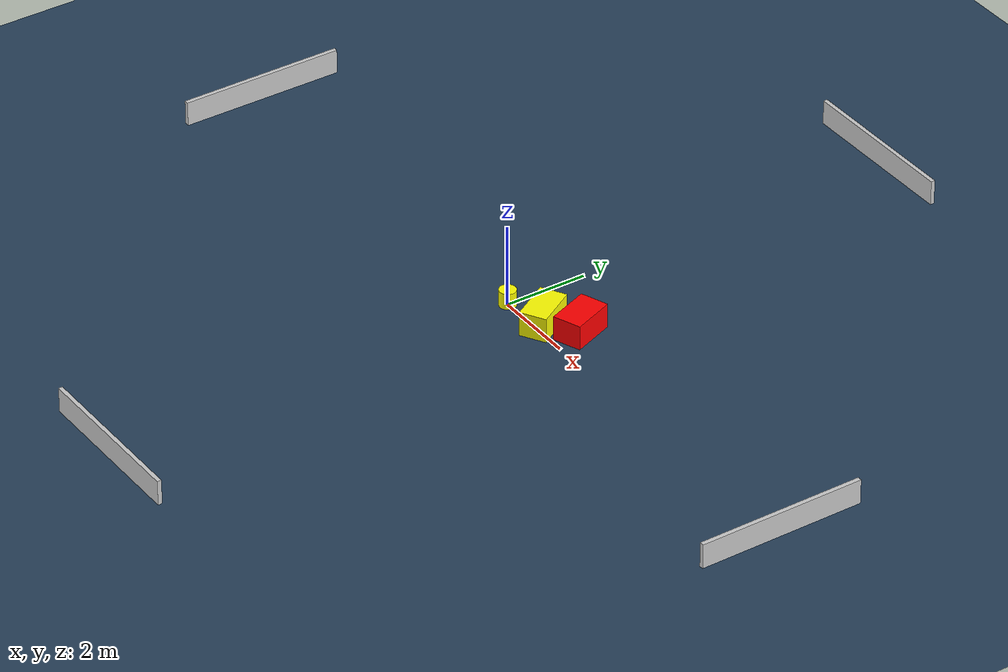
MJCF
<?xml version="1.0" ?>
<mujoco model="generated_environment">
  <option timestep="0.01" integrator="RK4" cone="elliptic"/>
  <default>
    <geom density="1"/>
  </default>
  <asset>
    <texture builtin="gradient" height="3072" name="skybox" rgb1="0.3 0.5 0.7" rgb2="0 0 0" type="skybox" width="512"/>
    <texture builtin="checker" height="300" name="groundplane" rgb1="0.2 0.3 0.4" rgb2="0.1 0.2 0.3" type="2d" width="300"/>
    <material name="groundplane" reflectance="0.2" texrepeat="5 5" texture="groundplane"/>
  </asset>
  <worldbody>
    <light dir="0 0 -1" directional="true" pos="0 0 1.5"/>
    <geom condim="3" friction="0.5 0.005 0.001" material="groundplane" name="floor" pos="0 0 0" size="0 0 0.05" type="plane"/>
    <body name="walls">
      <geom name="wall_1" condim="4" pos="-10.0 0.0 0.3" rgba="0.800000011920929 0.800000011920929 0.800000011920929 1.0" size="0.05 2.0 0.3" type="box"/>
      <geom name="wall_2" condim="4" pos="10.0 0.0 0.3" rgba="0.800000011920929 0.800000011920929 0.800000011920929 1.0" size="0.05 2.0 0.3" type="box"/>
      <geom name="wall_3" condim="4" pos="0.0 -10.0 0.3" rgba="0.800000011920929 0.800000011920929 0.800000011920929 1.0" size="2.0 0.05 0.3" type="box"/>
      <geom name="wall_4" condim="4" pos="0.0 10.0 0.3" rgba="0.800000011920929 0.800000011920929 0.800000011920929 1.0" size="2.0 0.05 0.3" type="box"/>
    </body>
    <body name="robot">
      <joint name="joint_x" type="slide" pos="0 0 0" axis="1 0 0"/>
      <joint name="joint_y" type="slide" pos="0 0 0" axis="0 1 0"/>
      <geom name="robot" type="cylinder" pos="0.0 0.0 0.2" size="0.2 0.2 0.0" mass="5.0" friction="1.0 0.005 0.0001" condim="4" rgba="1.0 1.0 0.0 1.0"/>
    </body>
    <body name="obstacle_1_movable">
      <geom name="obstacle_1_movable" condim="4" pos="1.1062780463430333 0.17643254220751964 0.3" euler="0 0 30.478637486848857" friction="0.0 0.005 0.001" rgba="1.0 1.0 0.0 1.0" size="0.31943574093276755 0.528764453528331 0.3" type="box" mass="0.1"/>
      <joint type="free"/>
    </body>
    <body name="obstacle_2_static">
      <geom name="obstacle_2_static" condim="4" pos="1.7712309773197077 0.6921017190644039 0.3" euler="0 0 200.96960924588623" friction="0.0 0.005 0.001" rgba="1.0 0.0 0.0 1.0" size="0.34264058782031204 0.5274976320543296 0.3" type="box"/>
    </body>
  </worldbody>
  <actuator>
    <motor name="actuator_x" joint="joint_x" gear="1" ctrlrange="-1 1"/>
    <motor name="actuator_y" joint="joint_y" gear="1" ctrlrange="-1 1"/>
  </actuator>
</mujoco>
